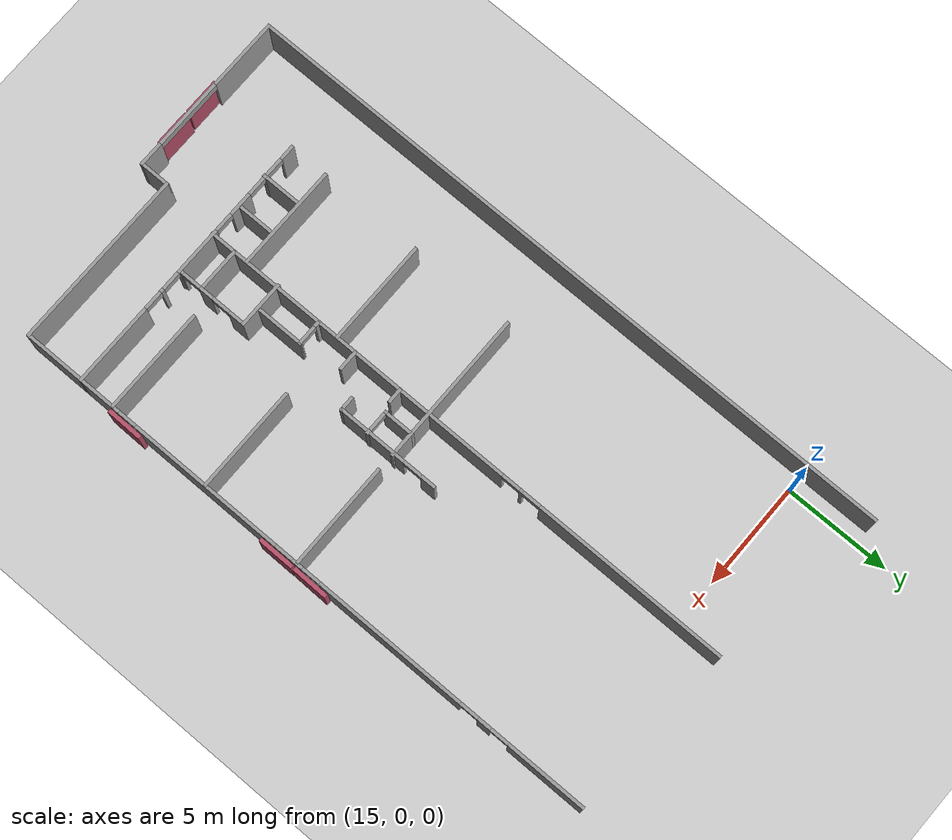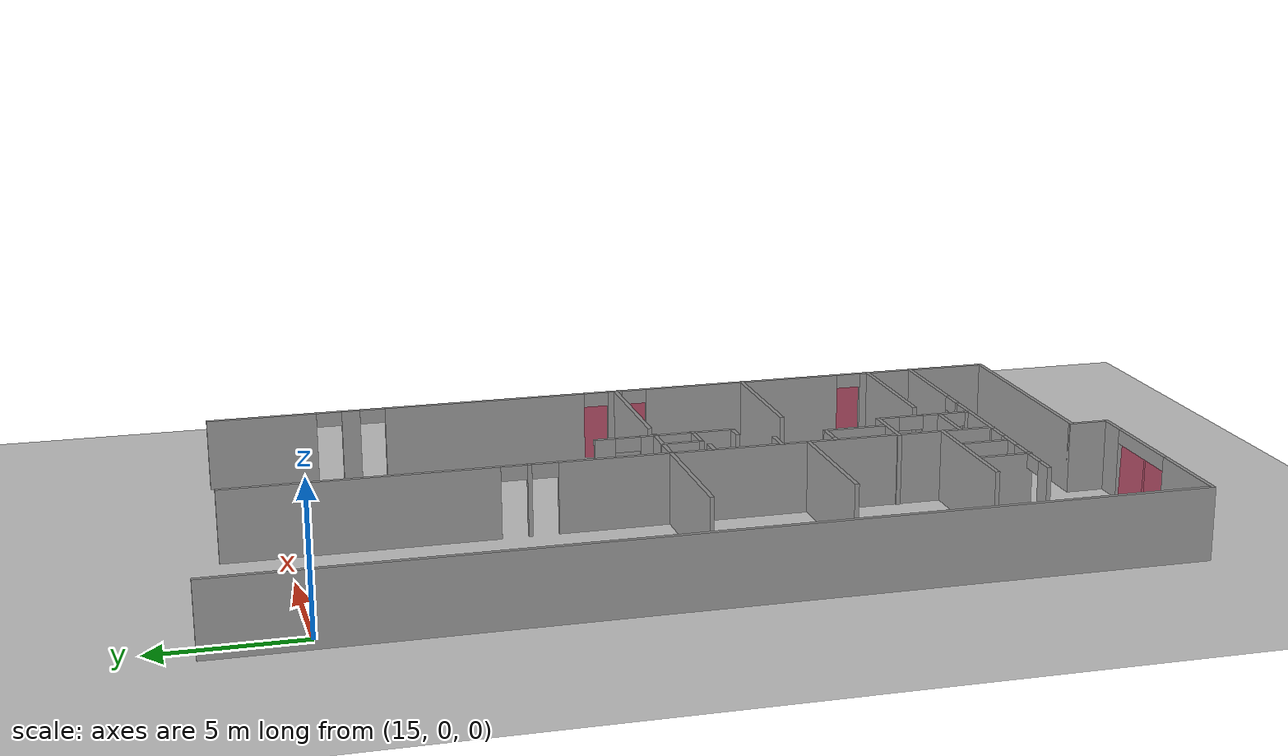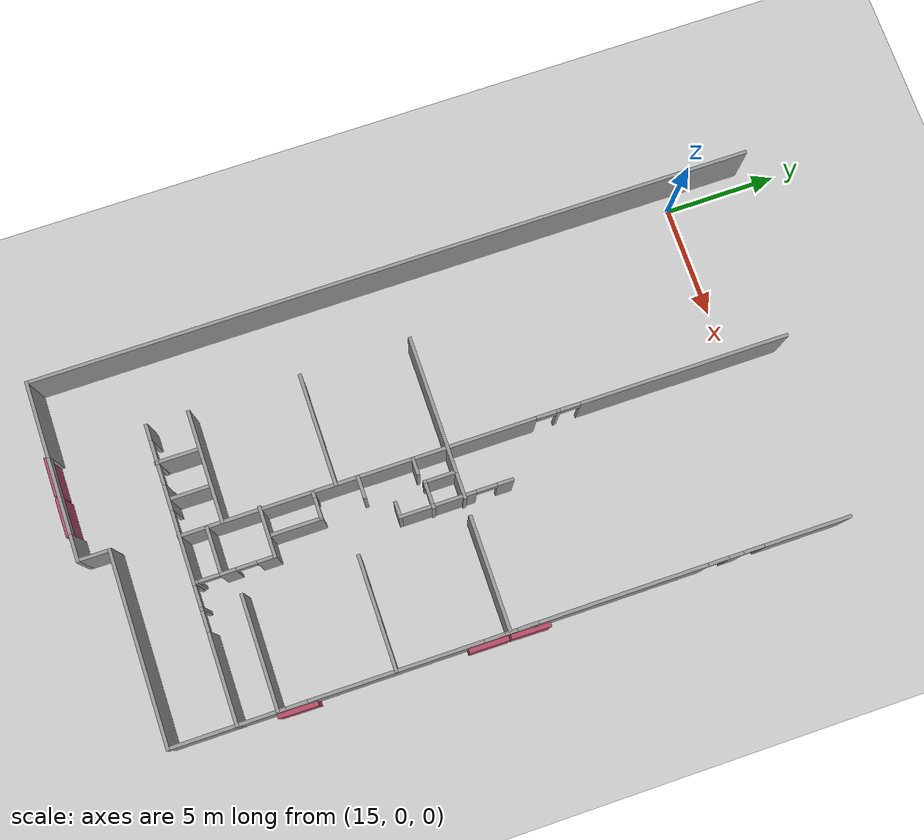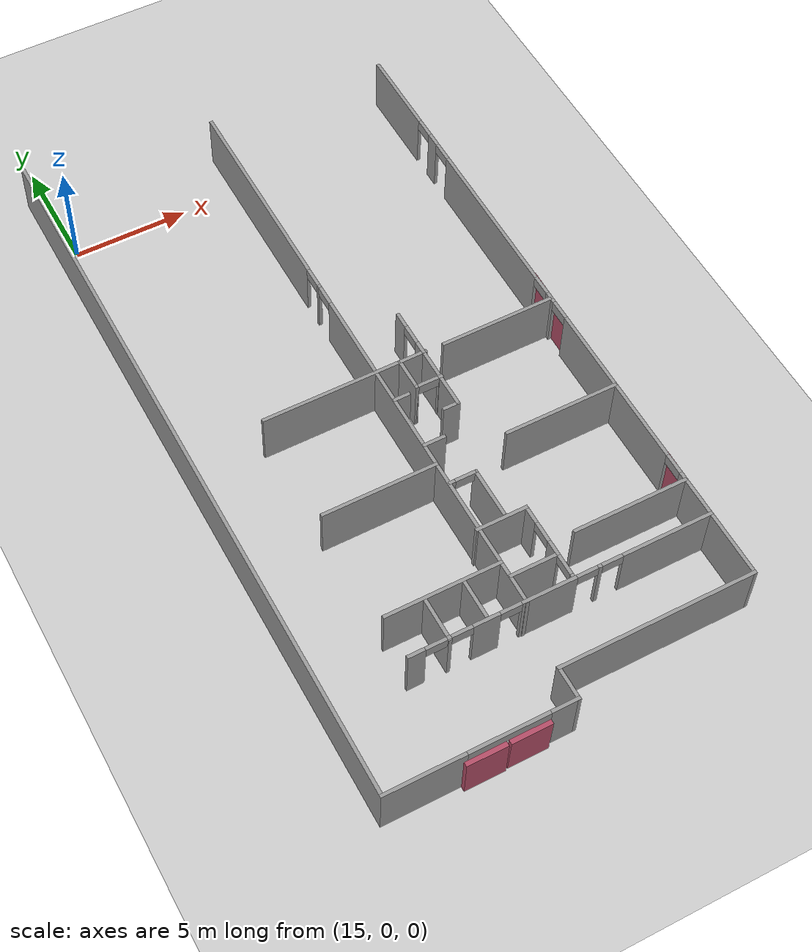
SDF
<sdf version="1.6">
 <world name="default">
  <model name="ground_plane">
   <pose>0 0 0.001 0 -0 0</pose>
   <static>1</static>
   <link name="link">
    <collision name="collision">
     <geometry><plane><normal>0 0 1</normal><size>100 100</size></plane></geometry>
     <surface><friction><ode><mu>100</mu><mu2>50</mu2></ode></friction></surface>
    </collision>
    <visual name="visual">
     <cast_shadows>0</cast_shadows>
     <geometry><plane><normal>0 0 1</normal><size>100 100</size></plane></geometry>
     <material>
      <script><uri>file://media/materials/scripts/gazebo.material</uri><name>Gazebo/Grey</name></script>
     </material>
    </visual>
   </link>
  </model>
  <model name="fin_se1f1.sdf">
   <pose>1.8125 -2.2901 0 0 -0 0</pose>
   <link name="Wall_10">
    <pose>28.6504 -10.5254 0 0 -0 1.5708</pose>
    <visual name="Wall_10_Visual_0">
     <pose>-12.1333 0 1.25 0 -0 0</pose>
     <geometry><box><size>4.98346 0.15 2.5</size></box></geometry>
     <material>
      <script><uri>file://media/materials/scripts/gazebo.material</uri><name>Gazebo/Grey</name></script>
      <ambient>1 1 1 1</ambient>
     </material>
     <meta><layer>0</layer></meta>
    </visual>
    <collision name="Wall_10_Collision_0">
     <geometry><box><size>4.98346 0.15 2.5</size></box></geometry>
     <pose>-12.1333 0 1.25 0 -0 0</pose>
    </collision>
    <visual name="Wall_10_Visual_1">
     <pose>-5.01797 0 1.25 0 -0 0</pose>
     <geometry><box><size>7.44713 0.15 2.5</size></box></geometry>
     <material>
      <script><uri>file://media/materials/scripts/gazebo.material</uri><name>Gazebo/Grey</name></script>
      <ambient>1 1 1 1</ambient>
     </material>
     <meta><layer>0</layer></meta>
    </visual>
    <collision name="Wall_10_Collision_1">
     <geometry><box><size>7.44713 0.15 2.5</size></box></geometry>
     <pose>-5.01797 0 1.25 0 -0 0</pose>
    </collision>
    <visual name="Wall_10_Visual_2">
     <pose>-0.130374 0 1.25 0 -0 0</pose>
     <geometry><box><size>0.528064 0.15 2.5</size></box></geometry>
     <material>
      <script><uri>file://media/materials/scripts/gazebo.material</uri><name>Gazebo/Grey</name></script>
      <ambient>1 1 1 1</ambient>
     </material>
     <meta><layer>0</layer></meta>
    </visual>
    <collision name="Wall_10_Collision_2">
     <geometry><box><size>0.528064 0.15 2.5</size></box></geometry>
     <pose>-0.130374 0 1.25 0 -0 0</pose>
    </collision>
    <visual name="Wall_10_Visual_3">
     <pose>4.68683 0 1.25 0 -0 0</pose>
     <geometry><box><size>7.30634 0.15 2.5</size></box></geometry>
     <material>
      <script><uri>file://media/materials/scripts/gazebo.material</uri><name>Gazebo/Grey</name></script>
      <ambient>1 1 1 1</ambient>
     </material>
     <meta><layer>0</layer></meta>
    </visual>
    <collision name="Wall_10_Collision_3">
     <geometry><box><size>7.30634 0.15 2.5</size></box></geometry>
     <pose>4.68683 0 1.25 0 -0 0</pose>
    </collision>
    <visual name="Wall_10_Visual_4">
     <pose>9.56437 0 1.25 0 -0 0</pose>
     <geometry><box><size>0.648745 0.15 2.5</size></box></geometry>
     <material>
      <script><uri>file://media/materials/scripts/gazebo.material</uri><name>Gazebo/Grey</name></script>
      <ambient>1 1 1 1</ambient>
     </material>
     <meta><layer>0</layer></meta>
    </visual>
    <collision name="Wall_10_Collision_4">
     <geometry><box><size>0.648745 0.15 2.5</size></box></geometry>
     <pose>9.56437 0 1.25 0 -0 0</pose>
    </collision>
    <visual name="Wall_10_Visual_5">
     <pose>12.7069 0 1.25 0 -0 0</pose>
     <geometry><box><size>3.83626 0.15 2.5</size></box></geometry>
     <material>
      <script><uri>file://media/materials/scripts/gazebo.material</uri><name>Gazebo/Grey</name></script>
      <ambient>1 1 1 1</ambient>
     </material>
     <meta><layer>0</layer></meta>
    </visual>
    <collision name="Wall_10_Collision_5">
     <geometry><box><size>3.83626 0.15 2.5</size></box></geometry>
     <pose>12.7069 0 1.25 0 -0 0</pose>
    </collision>
    <visual name="Wall_10_Visual_6">
     <pose>-9.19154 0 2.25 0 -0 0</pose>
     <geometry><box><size>0.9 0.15 0.5</size></box></geometry>
     <material>
      <script><uri>file://media/materials/scripts/gazebo.material</uri><name>Gazebo/Grey</name></script>
      <ambient>1 1 1 1</ambient>
     </material>
     <meta><layer>0</layer></meta>
    </visual>
    <collision name="Wall_10_Collision_6">
     <geometry><box><size>0.9 0.15 0.5</size></box></geometry>
     <pose>-9.19154 0 2.25 0 -0 0</pose>
    </collision>
    <visual name="Wall_10_Visual_7">
     <pose>-0.844406 0 2.25 0 -0 0</pose>
     <geometry><box><size>0.9 0.15 0.5</size></box></geometry>
     <material>
      <script><uri>file://media/materials/scripts/gazebo.material</uri><name>Gazebo/Grey</name></script>
      <ambient>1 1 1 1</ambient>
     </material>
     <meta><layer>0</layer></meta>
    </visual>
    <collision name="Wall_10_Collision_7">
     <geometry><box><size>0.9 0.15 0.5</size></box></geometry>
     <pose>-0.844406 0 2.25 0 -0 0</pose>
    </collision>
    <visual name="Wall_10_Visual_8">
     <pose>0.583658 0 2.25 0 -0 0</pose>
     <geometry><box><size>0.9 0.15 0.5</size></box></geometry>
     <material>
      <script><uri>file://media/materials/scripts/gazebo.material</uri><name>Gazebo/Grey</name></script>
      <ambient>1 1 1 1</ambient>
     </material>
     <meta><layer>0</layer></meta>
    </visual>
    <collision name="Wall_10_Collision_8">
     <geometry><box><size>0.9 0.15 0.5</size></box></geometry>
     <pose>0.583658 0 2.25 0 -0 0</pose>
    </collision>
    <visual name="Wall_10_Visual_9">
     <pose>8.78999 0 2.25 0 -0 0</pose>
     <geometry><box><size>0.9 0.15 0.5</size></box></geometry>
     <material>
      <script><uri>file://media/materials/scripts/gazebo.material</uri><name>Gazebo/Grey</name></script>
      <ambient>1 1 1 1</ambient>
     </material>
     <meta><layer>0</layer></meta>
    </visual>
    <collision name="Wall_10_Collision_9">
     <geometry><box><size>0.9 0.15 0.5</size></box></geometry>
     <pose>8.78999 0 2.25 0 -0 0</pose>
    </collision>
    <visual name="Wall_10_Visual_10">
     <pose>10.3387 0 2.25 0 -0 0</pose>
     <geometry><box><size>0.9 0.15 0.5</size></box></geometry>
     <material>
      <script><uri>file://media/materials/scripts/gazebo.material</uri><name>Gazebo/Grey</name></script>
      <ambient>1 1 1 1</ambient>
     </material>
     <meta><layer>0</layer></meta>
    </visual>
    <collision name="Wall_10_Collision_10">
     <geometry><box><size>0.9 0.15 0.5</size></box></geometry>
     <pose>10.3387 0 2.25 0 -0 0</pose>
    </collision>
   </link>
   <link name="Wall_165">
    <pose>22.2268 -22.214 0.001 0 -0 0</pose>
    <visual name="Wall_165_Visual_0">
     <pose>-6.13034 0 1.25 0 -0 0</pose>
     <geometry><box><size>0.739323 0.15 2.5</size></box></geometry>
     <material>
      <script><uri>file://media/materials/scripts/gazebo.material</uri><name>Gazebo/Grey</name></script>
      <ambient>1 1 1 1</ambient>
     </material>
     <meta><layer>0</layer></meta>
    </visual>
    <collision name="Wall_165_Collision_0">
     <geometry><box><size>0.739323 0.15 2.5</size></box></geometry>
     <pose>-6.13034 0 1.25 0 -0 0</pose>
    </collision>
    <visual name="Wall_165_Visual_1">
     <pose>-4.77767 0 1.25 0 -0 0</pose>
     <geometry><box><size>0.166019 0.15 2.5</size></box></geometry>
     <material>
      <script><uri>file://media/materials/scripts/gazebo.material</uri><name>Gazebo/Grey</name></script>
      <ambient>1 1 1 1</ambient>
     </material>
     <meta><layer>0</layer></meta>
    </visual>
    <collision name="Wall_165_Collision_1">
     <geometry><box><size>0.166019 0.15 2.5</size></box></geometry>
     <pose>-4.77767 0 1.25 0 -0 0</pose>
    </collision>
    <visual name="Wall_165_Visual_2">
     <pose>-3.22892 0 1.25 0 -0 0</pose>
     <geometry><box><size>1.13147 0.15 2.5</size></box></geometry>
     <material>
      <script><uri>file://media/materials/scripts/gazebo.material</uri><name>Gazebo/Grey</name></script>
      <ambient>1 1 1 1</ambient>
     </material>
     <meta><layer>0</layer></meta>
    </visual>
    <collision name="Wall_165_Collision_2">
     <geometry><box><size>1.13147 0.15 2.5</size></box></geometry>
     <pose>-3.22892 0 1.25 0 -0 0</pose>
    </collision>
    <visual name="Wall_165_Visual_3">
     <pose>-0.594044 0 1.25 0 -0 0</pose>
     <geometry><box><size>2.33828 0.15 2.5</size></box></geometry>
     <material>
      <script><uri>file://media/materials/scripts/gazebo.material</uri><name>Gazebo/Grey</name></script>
      <ambient>1 1 1 1</ambient>
     </material>
     <meta><layer>0</layer></meta>
    </visual>
    <collision name="Wall_165_Collision_3">
     <geometry><box><size>2.33828 0.15 2.5</size></box></geometry>
     <pose>-0.594044 0 1.25 0 -0 0</pose>
    </collision>
    <visual name="Wall_165_Visual_4">
     <pose>1.55811 0 1.25 0 -0 0</pose>
     <geometry><box><size>0.166019 0.15 2.5</size></box></geometry>
     <material>
      <script><uri>file://media/materials/scripts/gazebo.material</uri><name>Gazebo/Grey</name></script>
      <ambient>1 1 1 1</ambient>
     </material>
     <meta><layer>0</layer></meta>
    </visual>
    <collision name="Wall_165_Collision_4">
     <geometry><box><size>0.166019 0.15 2.5</size></box></geometry>
     <pose>1.55811 0 1.25 0 -0 0</pose>
    </collision>
    <visual name="Wall_165_Visual_5">
     <pose>4.52056 0 1.25 0 -0 0</pose>
     <geometry><box><size>3.95888 0.15 2.5</size></box></geometry>
     <material>
      <script><uri>file://media/materials/scripts/gazebo.material</uri><name>Gazebo/Grey</name></script>
      <ambient>1 1 1 1</ambient>
     </material>
     <meta><layer>0</layer></meta>
    </visual>
    <collision name="Wall_165_Collision_5">
     <geometry><box><size>3.95888 0.15 2.5</size></box></geometry>
     <pose>4.52056 0 1.25 0 -0 0</pose>
    </collision>
    <visual name="Wall_165_Visual_6">
     <pose>-5.31068 0 2.25 0 -0 0</pose>
     <geometry><box><size>0.9 0.15 0.5</size></box></geometry>
     <material>
      <script><uri>file://media/materials/scripts/gazebo.material</uri><name>Gazebo/Grey</name></script>
      <ambient>1 1 1 1</ambient>
     </material>
     <meta><layer>0</layer></meta>
    </visual>
    <collision name="Wall_165_Collision_6">
     <geometry><box><size>0.9 0.15 0.5</size></box></geometry>
     <pose>-5.31068 0 2.25 0 -0 0</pose>
    </collision>
    <visual name="Wall_165_Visual_7">
     <pose>-4.24466 0 2.25 0 -0 0</pose>
     <geometry><box><size>0.9 0.15 0.5</size></box></geometry>
     <material>
      <script><uri>file://media/materials/scripts/gazebo.material</uri><name>Gazebo/Grey</name></script>
      <ambient>1 1 1 1</ambient>
     </material>
     <meta><layer>0</layer></meta>
    </visual>
    <collision name="Wall_165_Collision_7">
     <geometry><box><size>0.9 0.15 0.5</size></box></geometry>
     <pose>-4.24466 0 2.25 0 -0 0</pose>
    </collision>
    <visual name="Wall_165_Visual_8">
     <pose>-2.21319 0 2.25 0 -0 0</pose>
     <geometry><box><size>0.9 0.15 0.5</size></box></geometry>
     <material>
      <script><uri>file://media/materials/scripts/gazebo.material</uri><name>Gazebo/Grey</name></script>
      <ambient>1 1 1 1</ambient>
     </material>
     <meta><layer>0</layer></meta>
    </visual>
    <collision name="Wall_165_Collision_8">
     <geometry><box><size>0.9 0.15 0.5</size></box></geometry>
     <pose>-2.21319 0 2.25 0 -0 0</pose>
    </collision>
    <visual name="Wall_165_Visual_9">
     <pose>1.0251 0 2.25 0 -0 0</pose>
     <geometry><box><size>0.9 0.15 0.5</size></box></geometry>
     <material>
      <script><uri>file://media/materials/scripts/gazebo.material</uri><name>Gazebo/Grey</name></script>
      <ambient>1 1 1 1</ambient>
     </material>
     <meta><layer>0</layer></meta>
    </visual>
    <collision name="Wall_165_Collision_9">
     <geometry><box><size>0.9 0.15 0.5</size></box></geometry>
     <pose>1.0251 0 2.25 0 -0 0</pose>
    </collision>
    <visual name="Wall_165_Visual_10">
     <pose>2.09112 0 2.25 0 -0 0</pose>
     <geometry><box><size>0.9 0.15 0.5</size></box></geometry>
     <material>
      <script><uri>file://media/materials/scripts/gazebo.material</uri><name>Gazebo/Grey</name></script>
      <ambient>1 1 1 1</ambient>
     </material>
     <meta><layer>0</layer></meta>
    </visual>
    <collision name="Wall_165_Collision_10">
     <geometry><box><size>0.9 0.15 0.5</size></box></geometry>
     <pose>2.09112 0 2.25 0 -0 0</pose>
    </collision>
   </link>
   <link name="Wall_167">
    <pose>20.659 -8.93568 0 0 0 -1.5708</pose>
    <visual name="Wall_167_Visual_0">
     <pose>-8.74263 0 1.25 0 -0 0</pose>
     <geometry><box><size>9.26475 0.15 2.5</size></box></geometry>
     <material>
      <script><uri>file://media/materials/scripts/gazebo.material</uri><name>Gazebo/Grey</name></script>
      <ambient>1 1 1 1</ambient>
     </material>
     <meta><layer>0</layer></meta>
    </visual>
    <collision name="Wall_167_Collision_0">
     <geometry><box><size>9.26475 0.15 2.5</size></box></geometry>
     <pose>-8.74263 0 1.25 0 -0 0</pose>
    </collision>
    <visual name="Wall_167_Visual_1">
     <pose>-3.1373 0 1.25 0 -0 0</pose>
     <geometry><box><size>0.145906 0.15 2.5</size></box></geometry>
     <material>
      <script><uri>file://media/materials/scripts/gazebo.material</uri><name>Gazebo/Grey</name></script>
      <ambient>1 1 1 1</ambient>
     </material>
     <meta><layer>0</layer></meta>
    </visual>
    <collision name="Wall_167_Collision_1">
     <geometry><box><size>0.145906 0.15 2.5</size></box></geometry>
     <pose>-3.1373 0 1.25 0 -0 0</pose>
    </collision>
    <visual name="Wall_167_Visual_2">
     <pose>5.60533 0 1.25 0 -0 0</pose>
     <geometry><box><size>15.5393 0.15 2.5</size></box></geometry>
     <material>
      <script><uri>file://media/materials/scripts/gazebo.material</uri><name>Gazebo/Grey</name></script>
      <ambient>1 1 1 1</ambient>
     </material>
     <meta><layer>0</layer></meta>
    </visual>
    <collision name="Wall_167_Collision_2">
     <geometry><box><size>15.5393 0.15 2.5</size></box></geometry>
     <pose>5.60533 0 1.25 0 -0 0</pose>
    </collision>
    <visual name="Wall_167_Visual_3">
     <pose>-3.66025 0 2.25 0 -0 0</pose>
     <geometry><box><size>0.9 0.15 0.5</size></box></geometry>
     <material>
      <script><uri>file://media/materials/scripts/gazebo.material</uri><name>Gazebo/Grey</name></script>
      <ambient>1 1 1 1</ambient>
     </material>
     <meta><layer>0</layer></meta>
    </visual>
    <collision name="Wall_167_Collision_3">
     <geometry><box><size>0.9 0.15 0.5</size></box></geometry>
     <pose>-3.66025 0 2.25 0 -0 0</pose>
    </collision>
    <visual name="Wall_167_Visual_4">
     <pose>-2.61435 0 2.25 0 -0 0</pose>
     <geometry><box><size>0.9 0.15 0.5</size></box></geometry>
     <material>
      <script><uri>file://media/materials/scripts/gazebo.material</uri><name>Gazebo/Grey</name></script>
      <ambient>1 1 1 1</ambient>
     </material>
     <meta><layer>0</layer></meta>
    </visual>
    <collision name="Wall_167_Collision_4">
     <geometry><box><size>0.9 0.15 0.5</size></box></geometry>
     <pose>-2.61435 0 2.25 0 -0 0</pose>
    </collision>
   </link>
   <link name="Wall_175">
    <collision name="Wall_175_Collision">
     <geometry><box><size>2.25 0.15 2.5</size></box></geometry>
     <pose>0 0 1.25 0 -0 0</pose>
    </collision>
    <visual name="Wall_175_Visual">
     <pose>0 0 1.25 0 -0 0</pose>
     <geometry><box><size>2.25 0.15 2.5</size></box></geometry>
     <material>
      <script><uri>file://media/materials/scripts/gazebo.material</uri><name>Gazebo/Grey</name></script>
      <ambient>1 1 1 1</ambient>
     </material>
     <meta><layer>0</layer></meta>
    </visual>
    <pose>21.6382 -18.7732 0.001 0 -0 0</pose>
   </link>
   <link name="Wall_176">
    <pose>22.6882 -20.4482 0 0 0 -1.5708</pose>
    <visual name="Wall_176_Visual_0">
     <pose>-1.33489 0 1.25 0 -0 0</pose>
     <geometry><box><size>0.830212 0.15 2.5</size></box></geometry>
     <material>
      <script><uri>file://media/materials/scripts/gazebo.material</uri><name>Gazebo/Grey</name></script>
      <ambient>1 1 1 1</ambient>
     </material>
     <meta><layer>0</layer></meta>
    </visual>
    <collision name="Wall_176_Collision_0">
     <geometry><box><size>0.830212 0.15 2.5</size></box></geometry>
     <pose>-1.33489 0 1.25 0 -0 0</pose>
    </collision>
    <visual name="Wall_176_Visual_1">
     <pose>0.324698 0 1.25 0 -0 0</pose>
     <geometry><box><size>0.688972 0.15 2.5</size></box></geometry>
     <material>
      <script><uri>file://media/materials/scripts/gazebo.material</uri><name>Gazebo/Grey</name></script>
      <ambient>1 1 1 1</ambient>
     </material>
     <meta><layer>0</layer></meta>
    </visual>
    <collision name="Wall_176_Collision_1">
     <geometry><box><size>0.688972 0.15 2.5</size></box></geometry>
     <pose>0.324698 0 1.25 0 -0 0</pose>
    </collision>
    <visual name="Wall_176_Visual_2">
     <pose>1.65959 0 1.25 0 -0 0</pose>
     <geometry><box><size>0.180816 0.15 2.5</size></box></geometry>
     <material>
      <script><uri>file://media/materials/scripts/gazebo.material</uri><name>Gazebo/Grey</name></script>
      <ambient>1 1 1 1</ambient>
     </material>
     <meta><layer>0</layer></meta>
    </visual>
    <collision name="Wall_176_Collision_2">
     <geometry><box><size>0.180816 0.15 2.5</size></box></geometry>
     <pose>1.65959 0 1.25 0 -0 0</pose>
    </collision>
    <visual name="Wall_176_Visual_3">
     <pose>-0.469788 0 2.25 0 -0 0</pose>
     <geometry><box><size>0.9 0.15 0.5</size></box></geometry>
     <material>
      <script><uri>file://media/materials/scripts/gazebo.material</uri><name>Gazebo/Grey</name></script>
      <ambient>1 1 1 1</ambient>
     </material>
     <meta><layer>0</layer></meta>
    </visual>
    <collision name="Wall_176_Collision_3">
     <geometry><box><size>0.9 0.15 0.5</size></box></geometry>
     <pose>-0.469788 0 2.25 0 -0 0</pose>
    </collision>
    <visual name="Wall_176_Visual_4">
     <pose>1.11918 0 2.25 0 -0 0</pose>
     <geometry><box><size>0.9 0.15 0.5</size></box></geometry>
     <material>
      <script><uri>file://media/materials/scripts/gazebo.material</uri><name>Gazebo/Grey</name></script>
      <ambient>1 1 1 1</ambient>
     </material>
     <meta><layer>0</layer></meta>
    </visual>
    <collision name="Wall_176_Collision_4">
     <geometry><box><size>0.9 0.15 0.5</size></box></geometry>
     <pose>1.11918 0 2.25 0 -0 0</pose>
    </collision>
   </link>
   <link name="Wall_202">
    <pose>22.786 -11.0033 0 0 0 -1.5708</pose>
    <visual name="Wall_202_Visual_0">
     <pose>-2.13652 0 1.25 0 -0 0</pose>
     <geometry><box><size>0.72696 0.15 2.5</size></box></geometry>
     <material>
      <script><uri>file://media/materials/scripts/gazebo.material</uri><name>Gazebo/Grey</name></script>
      <ambient>1 1 1 1</ambient>
     </material>
     <meta><layer>0</layer></meta>
    </visual>
    <collision name="Wall_202_Collision_0">
     <geometry><box><size>0.72696 0.15 2.5</size></box></geometry>
     <pose>-2.13652 0 1.25 0 -0 0</pose>
    </collision>
    <visual name="Wall_202_Visual_1">
     <pose>0.81348 0 1.25 0 -0 0</pose>
     <geometry><box><size>3.37304 0.15 2.5</size></box></geometry>
     <material>
      <script><uri>file://media/materials/scripts/gazebo.material</uri><name>Gazebo/Grey</name></script>
      <ambient>1 1 1 1</ambient>
     </material>
     <meta><layer>0</layer></meta>
    </visual>
    <collision name="Wall_202_Collision_1">
     <geometry><box><size>3.37304 0.15 2.5</size></box></geometry>
     <pose>0.81348 0 1.25 0 -0 0</pose>
    </collision>
    <visual name="Wall_202_Visual_2">
     <pose>-1.32304 0 2.25 0 -0 0</pose>
     <geometry><box><size>0.9 0.15 0.5</size></box></geometry>
     <material>
      <script><uri>file://media/materials/scripts/gazebo.material</uri><name>Gazebo/Grey</name></script>
      <ambient>1 1 1 1</ambient>
     </material>
     <meta><layer>0</layer></meta>
    </visual>
    <collision name="Wall_202_Collision_2">
     <geometry><box><size>0.9 0.15 0.5</size></box></geometry>
     <pose>-1.32304 0 2.25 0 -0 0</pose>
    </collision>
   </link>
   <link name="Wall_203">
    <collision name="Wall_203_Collision">
     <geometry><box><size>0.75 0.15 2.5</size></box></geometry>
     <pose>0 0 1.25 0 -0 0</pose>
    </collision>
    <visual name="Wall_203_Visual">
     <pose>0 0 1.25 0 -0 0</pose>
     <geometry><box><size>0.75 0.15 2.5</size></box></geometry>
     <material>
      <script><uri>file://media/materials/scripts/gazebo.material</uri><name>Gazebo/Grey</name></script>
      <ambient>1 1 1 1</ambient>
     </material>
     <meta><layer>0</layer></meta>
    </visual>
    <pose>22.486 -13.4283 0 0 -0 3.14159</pose>
   </link>
   <link name="Wall_205">
    <collision name="Wall_205_Collision">
     <geometry><box><size>0.75 0.15 2.5</size></box></geometry>
     <pose>0 0 1.25 0 -0 0</pose>
    </collision>
    <visual name="Wall_205_Visual">
     <pose>0 0 1.25 0 -0 0</pose>
     <geometry><box><size>0.75 0.15 2.5</size></box></geometry>
     <material>
      <script><uri>file://media/materials/scripts/gazebo.material</uri><name>Gazebo/Grey</name></script>
      <ambient>1 1 1 1</ambient>
     </material>
     <meta><layer>0</layer></meta>
    </visual>
    <pose>20.9784 -12.1724 0.001 0 -0 0</pose>
   </link>
   <link name="Wall_207">
    <collision name="Wall_207_Collision">
     <geometry><box><size>1.5 0.15 2.5</size></box></geometry>
     <pose>0 0 1.25 0 -0 0</pose>
    </collision>
    <visual name="Wall_207_Visual">
     <pose>0 0 1.25 0 -0 0</pose>
     <geometry><box><size>1.5 0.15 2.5</size></box></geometry>
     <material>
      <script><uri>file://media/materials/scripts/gazebo.material</uri><name>Gazebo/Grey</name></script>
      <ambient>1 1 1 1</ambient>
     </material>
     <meta><layer>0</layer></meta>
    </visual>
    <pose>21.7337 -11.3347 0 0 0 -1.5708</pose>
   </link>
   <link name="Wall_208">
    <pose>22.2837 -12.0097 0.001 0 -0 0</pose>
    <visual name="Wall_208_Visual_0">
     <pose>-0.556272 0 1.25 0 -0 0</pose>
     <geometry><box><size>0.137456 0.15 2.5</size></box></geometry>
     <material>
      <script><uri>file://media/materials/scripts/gazebo.material</uri><name>Gazebo/Grey</name></script>
      <ambient>1 1 1 1</ambient>
     </material>
     <meta><layer>0</layer></meta>
    </visual>
    <collision name="Wall_208_Collision_0">
     <geometry><box><size>0.137456 0.15 2.5</size></box></geometry>
     <pose>-0.556272 0 1.25 0 -0 0</pose>
    </collision>
    <visual name="Wall_208_Visual_1">
     <pose>0.518728 0 1.25 0 -0 0</pose>
     <geometry><box><size>0.212544 0.15 2.5</size></box></geometry>
     <material>
      <script><uri>file://media/materials/scripts/gazebo.material</uri><name>Gazebo/Grey</name></script>
      <ambient>1 1 1 1</ambient>
     </material>
     <meta><layer>0</layer></meta>
    </visual>
    <collision name="Wall_208_Collision_1">
     <geometry><box><size>0.212544 0.15 2.5</size></box></geometry>
     <pose>0.518728 0 1.25 0 -0 0</pose>
    </collision>
    <visual name="Wall_208_Visual_2">
     <pose>-0.037544 0 2.25 0 -0 0</pose>
     <geometry><box><size>0.9 0.15 0.5</size></box></geometry>
     <material>
      <script><uri>file://media/materials/scripts/gazebo.material</uri><name>Gazebo/Grey</name></script>
      <ambient>1 1 1 1</ambient>
     </material>
     <meta><layer>0</layer></meta>
    </visual>
    <collision name="Wall_208_Collision_2">
     <geometry><box><size>0.9 0.15 0.5</size></box></geometry>
     <pose>-0.037544 0 2.25 0 -0 0</pose>
    </collision>
   </link>
   <link name="Wall_210">
    <collision name="Wall_210_Collision">
     <geometry><box><size>7.25 0.15 2.5</size></box></geometry>
     <pose>0 0 1.25 0 -0 0</pose>
    </collision>
    <visual name="Wall_210_Visual">
     <pose>0 0 1.25 0 -0 0</pose>
     <geometry><box><size>7.25 0.15 2.5</size></box></geometry>
     <material>
      <script><uri>file://media/materials/scripts/gazebo.material</uri><name>Gazebo/Grey</name></script>
      <ambient>1 1 1 1</ambient>
     </material>
     <meta><layer>0</layer></meta>
    </visual>
    <pose>19.3094 -10.6597 0 0 -0 3.14159</pose>
   </link>
   <link name="Wall_212">
    <collision name="Wall_212_Collision">
     <geometry><box><size>1 0.15 2.5</size></box></geometry>
     <pose>0 0 1.25 0 -0 0</pose>
    </collision>
    <visual name="Wall_212_Visual">
     <pose>0 0 1.25 0 -0 0</pose>
     <geometry><box><size>1 0.15 2.5</size></box></geometry>
     <material>
      <script><uri>file://media/materials/scripts/gazebo.material</uri><name>Gazebo/Grey</name></script>
      <ambient>1 1 1 1</ambient>
     </material>
     <meta><layer>0</layer></meta>
    </visual>
    <pose>21.0991 -14.557 0.001 0 -0 0</pose>
   </link>
   <link name="Wall_214">
    <collision name="Wall_214_Collision">
     <geometry><box><size>5 0.15 2.5</size></box></geometry>
     <pose>0 0 1.25 0 -0 0</pose>
    </collision>
    <visual name="Wall_214_Visual">
     <pose>0 0 1.25 0 -0 0</pose>
     <geometry><box><size>5 0.15 2.5</size></box></geometry>
     <material>
      <script><uri>file://media/materials/scripts/gazebo.material</uri><name>Gazebo/Grey</name></script>
      <ambient>1 1 1 1</ambient>
     </material>
     <meta><layer>0</layer></meta>
    </visual>
    <pose>26.1362 -10.6951 0.001 0 -0 0</pose>
   </link>
   <link name="Wall_216">
    <collision name="Wall_216_Collision">
     <geometry><box><size>5 0.15 2.5</size></box></geometry>
     <pose>0 0 1.25 0 -0 0</pose>
    </collision>
    <visual name="Wall_216_Visual">
     <pose>0 0 1.25 0 -0 0</pose>
     <geometry><box><size>5 0.15 2.5</size></box></geometry>
     <material>
      <script><uri>file://media/materials/scripts/gazebo.material</uri><name>Gazebo/Grey</name></script>
      <ambient>1 1 1 1</ambient>
     </material>
     <meta><layer>0</layer></meta>
    </visual>
    <pose>26.1966 -15.5425 0.001 0 -0 0</pose>
   </link>
   <link name="Wall_218">
    <collision name="Wall_218_Collision">
     <geometry><box><size>5 0.15 2.5</size></box></geometry>
     <pose>0 0 1.25 0 -0 0</pose>
    </collision>
    <visual name="Wall_218_Visual">
     <pose>0 0 1.25 0 -0 0</pose>
     <geometry><box><size>5 0.15 2.5</size></box></geometry>
     <material>
      <script><uri>file://media/materials/scripts/gazebo.material</uri><name>Gazebo/Grey</name></script>
      <ambient>1 1 1 1</ambient>
     </material>
     <meta><layer>0</layer></meta>
    </visual>
    <pose>18.2316 -15.5224 0.001 0 -0 0</pose>
   </link>
   <link name="Wall_220">
    <collision name="Wall_220_Collision">
     <geometry><box><size>5 0.15 2.5</size></box></geometry>
     <pose>0 0 1.25 0 -0 0</pose>
    </collision>
    <visual name="Wall_220_Visual">
     <pose>0 0 1.25 0 -0 0</pose>
     <geometry><box><size>5 0.15 2.5</size></box></geometry>
     <material>
      <script><uri>file://media/materials/scripts/gazebo.material</uri><name>Gazebo/Grey</name></script>
      <ambient>1 1 1 1</ambient>
     </material>
     <meta><layer>0</layer></meta>
    </visual>
    <pose>18.2316 -20.3899 0.001 0 -0 0</pose>
   </link>
   <link name="Wall_222">
    <pose>21.2643 -16.508 0.001 0 -0 0</pose>
    <visual name="Wall_222_Visual_0">
     <pose>-0.48906 0 1.25 0 -0 0</pose>
     <geometry><box><size>0.27188 0.15 2.5</size></box></geometry>
     <material>
      <script><uri>file://media/materials/scripts/gazebo.material</uri><name>Gazebo/Grey</name></script>
      <ambient>1 1 1 1</ambient>
     </material>
     <meta><layer>0</layer></meta>
    </visual>
    <collision name="Wall_222_Collision_0">
     <geometry><box><size>0.27188 0.15 2.5</size></box></geometry>
     <pose>-0.48906 0 1.25 0 -0 0</pose>
    </collision>
    <visual name="Wall_222_Visual_1">
     <pose>0.58594 0 1.25 0 -0 0</pose>
     <geometry><box><size>0.07812 0.15 2.5</size></box></geometry>
     <material>
      <script><uri>file://media/materials/scripts/gazebo.material</uri><name>Gazebo/Grey</name></script>
      <ambient>1 1 1 1</ambient>
     </material>
     <meta><layer>0</layer></meta>
    </visual>
    <collision name="Wall_222_Collision_1">
     <geometry><box><size>0.07812 0.15 2.5</size></box></geometry>
     <pose>0.58594 0 1.25 0 -0 0</pose>
    </collision>
    <visual name="Wall_222_Visual_2">
     <pose>0.09688 0 2.25 0 -0 0</pose>
     <geometry><box><size>0.9 0.15 0.5</size></box></geometry>
     <material>
      <script><uri>file://media/materials/scripts/gazebo.material</uri><name>Gazebo/Grey</name></script>
      <ambient>1 1 1 1</ambient>
     </material>
     <meta><layer>0</layer></meta>
    </visual>
    <collision name="Wall_222_Collision_2">
     <geometry><box><size>0.9 0.15 0.5</size></box></geometry>
     <pose>0.09688 0 2.25 0 -0 0</pose>
    </collision>
   </link>
   <link name="Wall_223">
    <collision name="Wall_223_Collision">
     <geometry><box><size>2.25 0.15 2.5</size></box></geometry>
     <pose>0 0 1.25 0 -0 0</pose>
    </collision>
    <visual name="Wall_223_Visual">
     <pose>0 0 1.25 0 -0 0</pose>
     <geometry><box><size>2.25 0.15 2.5</size></box></geometry>
     <material>
      <script><uri>file://media/materials/scripts/gazebo.material</uri><name>Gazebo/Grey</name></script>
      <ambient>1 1 1 1</ambient>
     </material>
     <meta><layer>0</layer></meta>
    </visual>
    <pose>21.8143 -17.558 0 0 0 -1.5708</pose>
   </link>
   <link name="Wall_225">
    <collision name="Wall_225_Collision">
     <geometry><box><size>2 0.15 2.5</size></box></geometry>
     <pose>0 0 1.25 0 -0 0</pose>
    </collision>
    <visual name="Wall_225_Visual">
     <pose>0 0 1.25 0 -0 0</pose>
     <geometry><box><size>2 0.15 2.5</size></box></geometry>
     <material>
      <script><uri>file://media/materials/scripts/gazebo.material</uri><name>Gazebo/Grey</name></script>
      <ambient>1 1 1 1</ambient>
     </material>
     <meta><layer>0</layer></meta>
    </visual>
    <pose>21.6192 -21.0536 0.001 0 -0 0</pose>
   </link>
   <link name="Wall_227">
    <collision name="Wall_227_Collision">
     <geometry><box><size>2 0.15 2.5</size></box></geometry>
     <pose>0 0 1.25 0 -0 0</pose>
    </collision>
    <visual name="Wall_227_Visual">
     <pose>0 0 1.25 0 -0 0</pose>
     <geometry><box><size>2 0.15 2.5</size></box></geometry>
     <material>
      <script><uri>file://media/materials/scripts/gazebo.material</uri><name>Gazebo/Grey</name></script>
      <ambient>1 1 1 1</ambient>
     </material>
     <meta><layer>0</layer></meta>
    </visual>
    <pose>17.4358 -21.335 0 0 0 -1.5708</pose>
   </link>
   <link name="Wall_229">
    <collision name="Wall_229_Collision">
     <geometry><box><size>1.75 0.15 2.5</size></box></geometry>
     <pose>0 0 1.25 0 -0 0</pose>
    </collision>
    <visual name="Wall_229_Visual">
     <pose>0 0 1.25 0 -0 0</pose>
     <geometry><box><size>1.75 0.15 2.5</size></box></geometry>
     <material>
      <script><uri>file://media/materials/scripts/gazebo.material</uri><name>Gazebo/Grey</name></script>
      <ambient>1 1 1 1</ambient>
     </material>
     <meta><layer>0</layer></meta>
    </visual>
    <pose>19.065 -21.2502 0 0 0 -1.5708</pose>
   </link>
   <link name="Wall_231">
    <collision name="Wall_231_Collision">
     <geometry><box><size>5 0.15 2.5</size></box></geometry>
     <pose>0 0 1.25 0 -0 0</pose>
    </collision>
    <visual name="Wall_231_Visual">
     <pose>0 0 1.25 0 -0 0</pose>
     <geometry><box><size>5 0.15 2.5</size></box></geometry>
     <material>
      <script><uri>file://media/materials/scripts/gazebo.material</uri><name>Gazebo/Grey</name></script>
      <ambient>1 1 1 1</ambient>
     </material>
     <meta><layer>0</layer></meta>
    </visual>
    <pose>26.1966 -20.5106 0.001 0 -0 0</pose>
   </link>
   <link name="Wall_6">
    <collision name="Wall_6_Collision">
     <geometry><box><size>32.25 0.15 2.5</size></box></geometry>
     <pose>0 0 1.25 0 -0 0</pose>
    </collision>
    <visual name="Wall_6_Visual">
     <pose>0 0 1.25 0 -0 0</pose>
     <geometry><box><size>32.25 0.15 2.5</size></box></geometry>
     <material>
      <script><uri>file://media/materials/scripts/gazebo.material</uri><name>Gazebo/Grey</name></script>
      <ambient>1 1 1 1</ambient>
     </material>
     <meta><layer>0</layer></meta>
    </visual>
    <pose>12.4504 -10.3754 0 0 0 -1.5708</pose>
   </link>
   <link name="Wall_7">
    <pose>16.3754 -26.4254 0.001 0 -0 0</pose>
    <visual name="Wall_7_Visual_0">
     <pose>-2.28505 0 1.25 0 -0 0</pose>
     <geometry><box><size>3.4299 0.15 2.5</size></box></geometry>
     <material>
      <script><uri>file://media/materials/scripts/gazebo.material</uri><name>Gazebo/Grey</name></script>
      <ambient>1 1 1 1</ambient>
     </material>
     <meta><layer>0</layer></meta>
    </visual>
    <collision name="Wall_7_Collision_0">
     <geometry><box><size>3.4299 0.15 2.5</size></box></geometry>
     <pose>-2.28505 0 1.25 0 -0 0</pose>
    </collision>
    <visual name="Wall_7_Visual_1">
     <pose>3.39784 0 1.25 0 -0 0</pose>
     <geometry><box><size>1.20433 0.15 2.5</size></box></geometry>
     <material>
      <script><uri>file://media/materials/scripts/gazebo.material</uri><name>Gazebo/Grey</name></script>
      <ambient>1 1 1 1</ambient>
     </material>
     <meta><layer>0</layer></meta>
    </visual>
    <collision name="Wall_7_Collision_1">
     <geometry><box><size>1.20433 0.15 2.5</size></box></geometry>
     <pose>3.39784 0 1.25 0 -0 0</pose>
    </collision>
    <visual name="Wall_7_Visual_2">
     <pose>1.11279 0 2.25 0 -0 0</pose>
     <geometry><box><size>3.36577 0.15 0.5</size></box></geometry>
     <material>
      <script><uri>file://media/materials/scripts/gazebo.material</uri><name>Gazebo/Grey</name></script>
      <ambient>1 1 1 1</ambient>
     </material>
     <meta><layer>0</layer></meta>
    </visual>
    <collision name="Wall_7_Collision_2">
     <geometry><box><size>3.36577 0.15 0.5</size></box></geometry>
     <pose>1.11279 0 2.25 0 -0 0</pose>
    </collision>
   </link>
   <link name="Wall_8">
    <collision name="Wall_8_Collision">
     <geometry><box><size>1.5 0.15 2.5</size></box></geometry>
     <pose>0 0 1.25 0 -0 0</pose>
    </collision>
    <visual name="Wall_8_Visual">
     <pose>0 0 1.25 0 -0 0</pose>
     <geometry><box><size>1.5 0.15 2.5</size></box></geometry>
     <material>
      <script><uri>file://media/materials/scripts/gazebo.material</uri><name>Gazebo/Grey</name></script>
      <ambient>1 1 1 1</ambient>
     </material>
     <meta><layer>0</layer></meta>
    </visual>
    <pose>20.3004 -25.7504 0 0 -0 1.5708</pose>
   </link>
   <link name="Wall_9">
    <collision name="Wall_9_Collision">
     <geometry><box><size>8.5 0.15 2.5</size></box></geometry>
     <pose>0 0 1.25 0 -0 0</pose>
    </collision>
    <visual name="Wall_9_Visual">
     <pose>0 0 1.25 0 -0 0</pose>
     <geometry><box><size>8.5 0.15 2.5</size></box></geometry>
     <material>
      <script><uri>file://media/materials/scripts/gazebo.material</uri><name>Gazebo/Grey</name></script>
      <ambient>1 1 1 1</ambient>
     </material>
     <meta><layer>0</layer></meta>
    </visual>
    <pose>24.4754 -25.0754 0.001 0 -0 0</pose>
   </link>
   <static>1</static>
  </model>
  <model name="doorOutside_clone_8_clone_4">
   <link name="link">
    <pose>0.155539 -0.366282 0.216958 0 -0 0</pose>
    <inertial>
     <mass>2.13199</mass>
     <inertia>
      <ixx>0.452656</ixx>
      <ixy>0</ixy>
      <ixz>0</ixz>
      <iyy>0.796738</iyy>
      <iyz>0</iyz>
      <izz>0.699414</izz>
     </inertia>
     <pose>0 0 0.001 0 -0 0</pose>
    </inertial>
    <visual name="visual">
     <geometry><box><size>1.71368 0.198843 2.05986</size></box></geometry>
     <material>
      <script><name>Gazebo/Grey</name><uri>file://media/materials/scripts/gazebo.material</uri></script>
      <ambient>0.7 0.3 0.4 1</ambient>
      <diffuse>0.7 0.7 0.7 1</diffuse>
      <specular>0.01 0.01 0.01 1</specular>
      <emissive>0 0 0 1</emissive>
      <shader type="vertex"><normal_map>__default__</normal_map></shader>
      <lighting>0</lighting>
     </material>
     <pose>0 0 0.001 0 -0 0</pose>
    </visual>
    <collision name="collision">
     <pose>0 0 0.001 0 -0 0</pose>
     <geometry><box><size>1.71368 0.198843 2.05986</size></box></geometry>
     <surface>
      <friction>
       <ode><mu>1</mu><mu2>1</mu2><fdir1>0 0 0</fdir1><slip1>0</slip1><slip2>0</slip2></ode>
       <torsional>
        <coefficient>1</coefficient>
        <patch_radius>0</patch_radius>
        <surface_radius>0</surface_radius>
        <use_patch_radius>1</use_patch_radius>
        <ode><slip>0</slip></ode>
       </torsional>
      </friction>
      <bounce><restitution_coefficient>0</restitution_coefficient><threshold>1e+06</threshold></bounce>
      <contact>
       <collide_without_contact>0</collide_without_contact>
       <collide_without_contact_bitmask>1</collide_without_contact_bitmask>
       <collide_bitmask>1</collide_bitmask>
       <ode>
        <soft_cfm>0</soft_cfm>
        <soft_erp>0.2</soft_erp>
        <kp>1e+13</kp>
        <kd>1</kd>
        <max_vel>0.01</max_vel>
        <min_depth>0</min_depth>
       </ode>
       <bullet>
        <split_impulse>1</split_impulse>
        <split_impulse_penetration_threshold>-0.01</split_impulse_penetration_threshold>
        <soft_cfm>0</soft_cfm>
        <soft_erp>0.2</soft_erp>
        <kp>1e+13</kp>
        <kd>1</kd>
       </bullet>
      </contact>
     </surface>
    </collision>
   </link>
   <static>1</static>
   <pose>30.2864 -12.2879 0.812972 0 -0 1.55383</pose>
  </model>
  <model name="doorOutside_clone_8_clone_5">
   <link name="link">
    <pose>0.155539 -0.366282 0.216958 0 -0 0</pose>
    <inertial>
     <mass>2.13199</mass>
     <inertia>
      <ixx>0.452656</ixx>
      <ixy>0</ixy>
      <ixz>0</ixz>
      <iyy>0.796738</iyy>
      <iyz>0</iyz>
      <izz>0.699414</izz>
     </inertia>
     <pose>0 0 0.001 0 -0 0</pose>
    </inertial>
    <visual name="visual">
     <geometry><box><size>1.71368 0.198843 2.05986</size></box></geometry>
     <material>
      <script><name>Gazebo/Grey</name><uri>file://media/materials/scripts/gazebo.material</uri></script>
      <ambient>0.7 0.3 0.4 1</ambient>
      <diffuse>0.7 0.7 0.7 1</diffuse>
      <specular>0.01 0.01 0.01 1</specular>
      <emissive>0 0 0 1</emissive>
      <shader type="vertex"><normal_map>__default__</normal_map></shader>
      <lighting>0</lighting>
     </material>
     <pose>0 0 0.001 0 -0 0</pose>
    </visual>
    <collision name="collision">
     <pose>0 0 0.001 0 -0 0</pose>
     <geometry><box><size>1.71368 0.198843 2.05986</size></box></geometry>
     <surface>
      <friction>
       <ode><mu>1</mu><mu2>1</mu2><fdir1>0 0 0</fdir1><slip1>0</slip1><slip2>0</slip2></ode>
       <torsional>
        <coefficient>1</coefficient>
        <patch_radius>0</patch_radius>
        <surface_radius>0</surface_radius>
        <use_patch_radius>1</use_patch_radius>
        <ode><slip>0</slip></ode>
       </torsional>
      </friction>
      <bounce><restitution_coefficient>0</restitution_coefficient><threshold>1e+06</threshold></bounce>
      <contact>
       <collide_without_contact>0</collide_without_contact>
       <collide_without_contact_bitmask>1</collide_without_contact_bitmask>
       <collide_bitmask>1</collide_bitmask>
       <ode>
        <soft_cfm>0</soft_cfm>
        <soft_erp>0.2</soft_erp>
        <kp>1e+13</kp>
        <kd>1</kd>
        <max_vel>0.01</max_vel>
        <min_depth>0</min_depth>
       </ode>
       <bullet>
        <split_impulse>1</split_impulse>
        <split_impulse_penetration_threshold>-0.01</split_impulse_penetration_threshold>
        <soft_cfm>0</soft_cfm>
        <soft_erp>0.2</soft_erp>
        <kp>1e+13</kp>
        <kd>1</kd>
       </bullet>
      </contact>
     </surface>
    </collision>
   </link>
   <static>1</static>
   <pose>30.2754 -14.0943 0.812971 -1e-06 -1e-06 1.56462</pose>
  </model>
  <model name="doorOutside_clone_8_clone_6">
   <link name="link">
    <pose>0.155539 -0.366282 0.216958 0 -0 0</pose>
    <inertial>
     <mass>2.13199</mass>
     <inertia>
      <ixx>0.452656</ixx>
      <ixy>0</ixy>
      <ixz>0</ixz>
      <iyy>0.796738</iyy>
      <iyz>0</iyz>
      <izz>0.699414</izz>
     </inertia>
     <pose>0 0 0.001 0 -0 0</pose>
    </inertial>
    <visual name="visual">
     <geometry><box><size>1.71368 0.198843 2.05986</size></box></geometry>
     <material>
      <script><name>Gazebo/Grey</name><uri>file://media/materials/scripts/gazebo.material</uri></script>
      <ambient>0.7 0.3 0.4 1</ambient>
      <diffuse>0.7 0.7 0.7 1</diffuse>
      <specular>0.01 0.01 0.01 1</specular>
      <emissive>0 0 0 1</emissive>
      <shader type="vertex"><normal_map>__default__</normal_map></shader>
      <lighting>0</lighting>
     </material>
     <pose>0 0 0.001 0 -0 0</pose>
    </visual>
    <collision name="collision">
     <pose>0 0 0.001 0 -0 0</pose>
     <geometry><box><size>1.71368 0.198843 2.05986</size></box></geometry>
     <surface>
      <friction>
       <ode><mu>1</mu><mu2>1</mu2><fdir1>0 0 0</fdir1><slip1>0</slip1><slip2>0</slip2></ode>
       <torsional>
        <coefficient>1</coefficient>
        <patch_radius>0</patch_radius>
        <surface_radius>0</surface_radius>
        <use_patch_radius>1</use_patch_radius>
        <ode><slip>0</slip></ode>
       </torsional>
      </friction>
      <bounce><restitution_coefficient>0</restitution_coefficient><threshold>1e+06</threshold></bounce>
      <contact>
       <collide_without_contact>0</collide_without_contact>
       <collide_without_contact_bitmask>1</collide_without_contact_bitmask>
       <collide_bitmask>1</collide_bitmask>
       <ode>
        <soft_cfm>0</soft_cfm>
        <soft_erp>0.2</soft_erp>
        <kp>1e+13</kp>
        <kd>1</kd>
        <max_vel>0.01</max_vel>
        <min_depth>0</min_depth>
       </ode>
       <bullet>
        <split_impulse>1</split_impulse>
        <split_impulse_penetration_threshold>-0.01</split_impulse_penetration_threshold>
        <soft_cfm>0</soft_cfm>
        <soft_erp>0.2</soft_erp>
        <kp>1e+13</kp>
        <kd>1</kd>
       </bullet>
      </contact>
     </surface>
    </collision>
   </link>
   <static>1</static>
   <pose>30.2806 -22.2057 0.812962 1e-06 -5e-06 1.5574</pose>
  </model>
  <model name="doorOutside_clone_8_clone_7">
   <link name="link">
    <pose>0.155539 -0.366282 0.216958 0 -0 0</pose>
    <inertial>
     <mass>2.13199</mass>
     <inertia>
      <ixx>0.452656</ixx>
      <ixy>0</ixy>
      <ixz>0</ixz>
      <iyy>0.796738</iyy>
      <iyz>0</iyz>
      <izz>0.699414</izz>
     </inertia>
     <pose>0 0 0.001 0 -0 0</pose>
    </inertial>
    <visual name="visual">
     <geometry><box><size>1.71368 0.198843 2.05986</size></box></geometry>
     <material>
      <script><name>Gazebo/Grey</name><uri>file://media/materials/scripts/gazebo.material</uri></script>
      <ambient>0.7 0.3 0.4 1</ambient>
      <diffuse>0.7 0.7 0.7 1</diffuse>
      <specular>0.01 0.01 0.01 1</specular>
      <emissive>0 0 0 1</emissive>
      <shader type="vertex"><normal_map>__default__</normal_map></shader>
      <lighting>0</lighting>
     </material>
     <pose>0 0 0.001 0 -0 0</pose>
    </visual>
    <collision name="collision">
     <pose>0 0 0.001 0 -0 0</pose>
     <geometry><box><size>1.71368 0.198843 2.05986</size></box></geometry>
     <surface>
      <friction>
       <ode><mu>1</mu><mu2>1</mu2><fdir1>0 0 0</fdir1><slip1>0</slip1><slip2>0</slip2></ode>
       <torsional>
        <coefficient>1</coefficient>
        <patch_radius>0</patch_radius>
        <surface_radius>0</surface_radius>
        <use_patch_radius>1</use_patch_radius>
        <ode><slip>0</slip></ode>
       </torsional>
      </friction>
      <bounce><restitution_coefficient>0</restitution_coefficient><threshold>1e+06</threshold></bounce>
      <contact>
       <collide_without_contact>0</collide_without_contact>
       <collide_without_contact_bitmask>1</collide_without_contact_bitmask>
       <collide_bitmask>1</collide_bitmask>
       <ode>
        <soft_cfm>0</soft_cfm>
        <soft_erp>0.2</soft_erp>
        <kp>1e+13</kp>
        <kd>1</kd>
        <max_vel>0.01</max_vel>
        <min_depth>0</min_depth>
       </ode>
       <bullet>
        <split_impulse>1</split_impulse>
        <split_impulse_penetration_threshold>-0.01</split_impulse_penetration_threshold>
        <soft_cfm>0</soft_cfm>
        <soft_erp>0.2</soft_erp>
        <kp>1e+13</kp>
        <kd>1</kd>
       </bullet>
      </contact>
     </surface>
    </collision>
   </link>
   <static>1</static>
   <pose>19.9564 -28.4935 0.824588 0.025519 -5e-06 0</pose>
  </model>
  <model name="doorOutside_clone_8_clone_7_clone">
   <link name="link">
    <pose>0.155539 -0.366282 0.216958 0 -0 0</pose>
    <inertial>
     <mass>2.13199</mass>
     <inertia>
      <ixx>0.452656</ixx>
      <ixy>0</ixy>
      <ixz>0</ixz>
      <iyy>0.796738</iyy>
      <iyz>0</iyz>
      <izz>0.699414</izz>
     </inertia>
     <pose>0 0 0.001 0 -0 0</pose>
    </inertial>
    <visual name="visual">
     <geometry><box><size>1.71368 0.198843 2.05986</size></box></geometry>
     <material>
      <script><name>Gazebo/Grey</name><uri>file://media/materials/scripts/gazebo.material</uri></script>
      <ambient>0.7 0.3 0.4 1</ambient>
      <diffuse>0.7 0.7 0.7 1</diffuse>
      <specular>0.01 0.01 0.01 1</specular>
      <emissive>0 0 0 1</emissive>
      <shader type="vertex"><normal_map>__default__</normal_map></shader>
      <lighting>0</lighting>
     </material>
     <pose>0 0 0.001 0 -0 0</pose>
    </visual>
    <collision name="collision">
     <pose>0 0 0.001 0 -0 0</pose>
     <geometry><box><size>1.71368 0.198843 2.05986</size></box></geometry>
     <surface>
      <friction>
       <ode><mu>1</mu><mu2>1</mu2><fdir1>0 0 0</fdir1><slip1>0</slip1><slip2>0</slip2></ode>
       <torsional>
        <coefficient>1</coefficient>
        <patch_radius>0</patch_radius>
        <surface_radius>0</surface_radius>
        <use_patch_radius>1</use_patch_radius>
        <ode><slip>0</slip></ode>
       </torsional>
      </friction>
      <bounce><restitution_coefficient>0</restitution_coefficient><threshold>1e+06</threshold></bounce>
      <contact>
       <collide_without_contact>0</collide_without_contact>
       <collide_without_contact_bitmask>1</collide_without_contact_bitmask>
       <collide_bitmask>1</collide_bitmask>
       <ode>
        <soft_cfm>0</soft_cfm>
        <soft_erp>0.2</soft_erp>
        <kp>1e+13</kp>
        <kd>1</kd>
        <max_vel>0.01</max_vel>
        <min_depth>0</min_depth>
       </ode>
       <bullet>
        <split_impulse>1</split_impulse>
        <split_impulse_penetration_threshold>-0.01</split_impulse_penetration_threshold>
        <soft_cfm>0</soft_cfm>
        <soft_erp>0.2</soft_erp>
        <kp>1e+13</kp>
        <kd>1</kd>
       </bullet>
      </contact>
     </surface>
    </collision>
   </link>
   <static>1</static>
   <pose>18.1556 -28.5236 0.812972 1e-06 -1e-06 0</pose>
  </model>
 </world>
</sdf>
